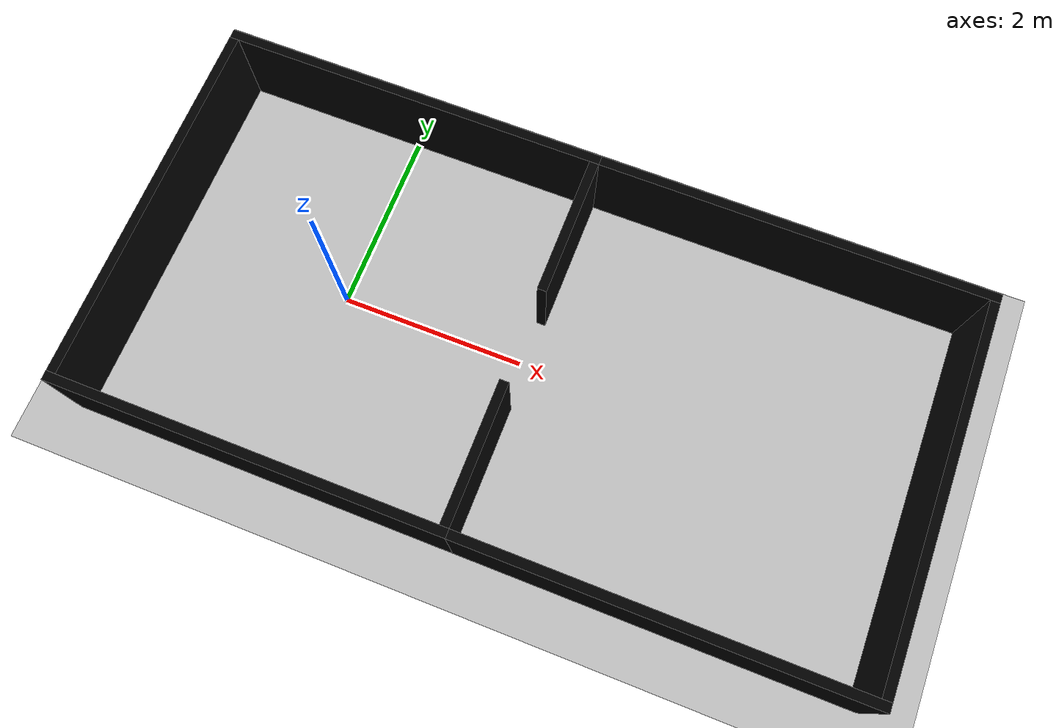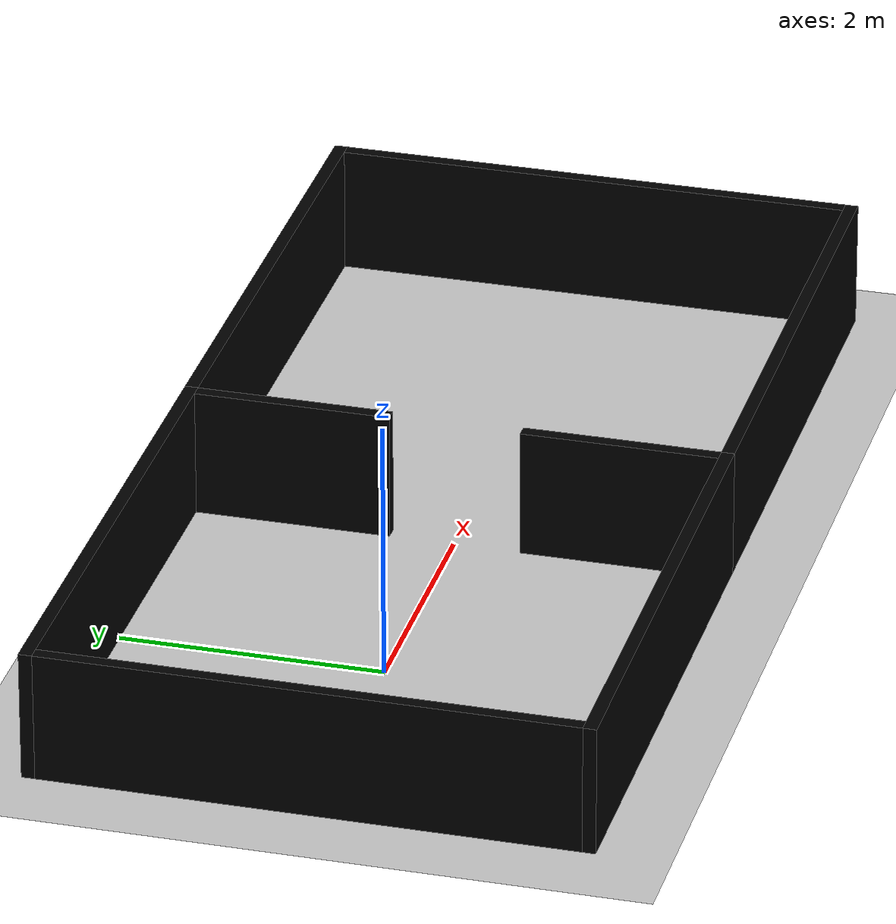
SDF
<?xml version="1.0"?>
<sdf version="1.8">
  <world name="dqn">

    <plugin
      filename="gz-sim-physics-system"
      name="gz::sim::systems::Physics">
    </plugin>
    <plugin
      filename="gz-sim-user-commands-system"
      name="gz::sim::systems::UserCommands">
    </plugin>
    <plugin
      filename="gz-sim-scene-broadcaster-system"
      name="gz::sim::systems::SceneBroadcaster">
    </plugin>
    <plugin
      filename="gz-sim-sensors-system"
      name="gz::sim::systems::Sensors">
      <render_engine>ogre2</render_engine>
    </plugin>

    <physics type="ode">
      <real_time_update_rate>1000.0</real_time_update_rate>
      <max_step_size>0.001</max_step_size>
      <real_time_factor>1</real_time_factor>
      <ode>
        <solver>
          <type>quick</type>
          <iters>150</iters>
          <precon_iters>0</precon_iters>
          <sor>1.400000</sor>
          <use_dynamic_moi_rescaling>1</use_dynamic_moi_rescaling>
        </solver>
        <constraints>
          <cfm>0.00001</cfm>
          <erp>0.2</erp>
          <contact_max_correcting_vel>2000.000000</contact_max_correcting_vel>
          <contact_surface_layer>0.01000</contact_surface_layer>
        </constraints>
      </ode>
    </physics>

    <include>
      <uri>https://fuel.gazebosim.org/1.0/OpenRobotics/models/Ground Plane</uri>
    </include>

    <light type="directional" name="sun">
      <cast_shadows>false</cast_shadows>
      <pose>0 0 10 0 0 0</pose>
      <diffuse>0.8 0.8 0.8 1</diffuse>
      <specular>0.2 0.2 0.2 1</specular>
      <attenuation>
        <range>1000</range>
        <constant>0.9</constant>
        <linear>0.01</linear>
        <quadratic>0.001</quadratic>
      </attenuation>
      <direction>-0.5 0.1 -0.9</direction>
    </light>

    <!-- PRIMA STANZA -->

    <!-- Parete Nord Stanza 1 -->
    <model name="wall_north1">
      <static>true</static>
      <pose>0 2.05 0.5 0 0 0</pose>
      <link name="wall_link">
        <collision name="wall_collision">
          <geometry>
            <box>
              <size>4.2 0.1 1.0</size>
            </box>
          </geometry>
        </collision>
        <visual name="wall_visual">
          <geometry>
            <box>
              <size>4.2 0.1 1.0</size>
            </box>
          </geometry>
          <material>
            <ambient>0.0 0.0 0.0 1</ambient>
            <diffuse>0.0 0.0 0.0 1</diffuse>
          </material>
        </visual>
      </link>
    </model>

    <!-- Parete Sud Stanza 1 -->
    <model name="wall_south1">
      <static>true</static>
      <pose>0 -2.05 0.5 0 0 0</pose>
      <link name="wall_link">
        <collision name="wall_collision">
          <geometry>
            <box>
              <size>4.2 0.1 1.0</size>
            </box>
          </geometry>
        </collision>
        <visual name="wall_visual">
          <geometry>
            <box>
              <size>4.2 0.1 1.0</size>
            </box>
          </geometry>
          <material>
            <ambient>0.0 0.0 0.0 1</ambient>
            <diffuse>0.0 0.0 0.0 1</diffuse>
          </material>
        </visual>
      </link>
    </model>

        <!-- Parete Est Stanza 1 (solo parte superiore) -->
    <model name="wall_east1_top">
      <static>true</static>
      <pose>2.05 1.25 0.5 0 0 0</pose>
      <link name="wall_link">
        <collision name="wall_collision">
          <geometry>
            <box>
              <size>0.1 1.5 1.0</size>
            </box>
          </geometry>
        </collision>
        <visual name="wall_visual">
          <geometry>
            <box>
              <size>0.1 1.5 1.0</size>
            </box>
          </geometry>
          <material>
            <ambient>0.0 0.0 0.0 1</ambient>
            <diffuse>0.0 0.0 0.0 1</diffuse>
          </material>
        </visual>
      </link>
    </model>

    <!-- Parete Est Stanza 1 (solo parte inferiore) -->
    <model name="wall_east1_bottom">
      <static>true</static>
      <pose>2.05 -1.25 0.5 0 0 0</pose>
      <link name="wall_link">
        <collision name="wall_collision">
          <geometry>
            <box>
              <size>0.1 1.5 1.0</size>
            </box>
          </geometry>
        </collision>
        <visual name="wall_visual">
          <geometry>
            <box>
              <size>0.1 1.5 1.0</size>
            </box>
          </geometry>
          <material>
            <ambient>0.0 0.0 0.0 1</ambient>
            <diffuse>0.0 0.0 0.0 1</diffuse>
          </material>
        </visual>
      </link>
    </model>

    <!-- Parete Ovest Stanza 1 -->
    <model name="wall_west1">
      <static>true</static>
      <pose>-2.05 0 0.5 0 0 0</pose>
      <link name="wall_link">
        <collision name="wall_collision">
          <geometry>
            <box>
              <size>0.1 4.0 1.0</size>
            </box>
          </geometry>
        </collision>
        <visual name="wall_visual">
          <geometry>
            <box>
              <size>0.1 4.0 1.0</size>
            </box>
          </geometry>
          <material>
            <ambient>0.0 0.0 0.0 1</ambient>
            <diffuse>0.0 0.0 0.0 1</diffuse>
          </material>
        </visual>
      </link>
    </model>

    <!-- SECONDA STANZA -->

    <!-- Parete Nord Stanza 2 -->
    <model name="wall_north2">
      <static>true</static>
      <pose>4.2 2.05 0.5 0 0 0</pose>
      <link name="wall_link">
        <collision name="wall_collision">
          <geometry>
            <box>
              <size>4.2 0.1 1.0</size>
            </box>
          </geometry>
        </collision>
        <visual name="wall_visual">
          <geometry>
            <box>
              <size>4.2 0.1 1.0</size>
            </box>
          </geometry>
          <material>
            <ambient>0.0 0.0 0.0 1</ambient>
            <diffuse>0.0 0.0 0.0 1</diffuse>
          </material>
        </visual>
      </link>
    </model>

    <!-- Parete Sud Stanza 2 -->
    <model name="wall_south2">
      <static>true</static>
      <pose>4.2 -2.05 0.5 0 0 0</pose>
      <link name="wall_link">
        <collision name="wall_collision">
          <geometry>
            <box>
              <size>4.2 0.1 1.0</size>
            </box>
          </geometry>
        </collision>
        <visual name="wall_visual">
          <geometry>
            <box>
              <size>4.2 0.1 1.0</size>
            </box>
          </geometry>
          <material>
            <ambient>0.0 0.0 0.0 1</ambient>
            <diffuse>0.0 0.0 0.0 1</diffuse>
          </material>
        </visual>
      </link>
    </model>

    <!-- Parete Est Stanza 2 -->
    <model name="wall_east2">
      <static>true</static>
      <pose>6.25 0 0.5 0 0 0</pose>
      <link name="wall_link">
        <collision name="wall_collision">
          <geometry>
            <box>
              <size>0.1 4.0 1.0</size>
            </box>
          </geometry>
        </collision>
        <visual name="wall_visual">
          <geometry>
            <box>
              <size>0.1 4.0 1.0</size>
            </box>
          </geometry>
          <material>
            <ambient>0.0 0.0 0.0 1</ambient>
            <diffuse>0.0 0.0 0.0 1</diffuse>
          </material>
        </visual>
      </link>
    </model>

  </world>
</sdf>
